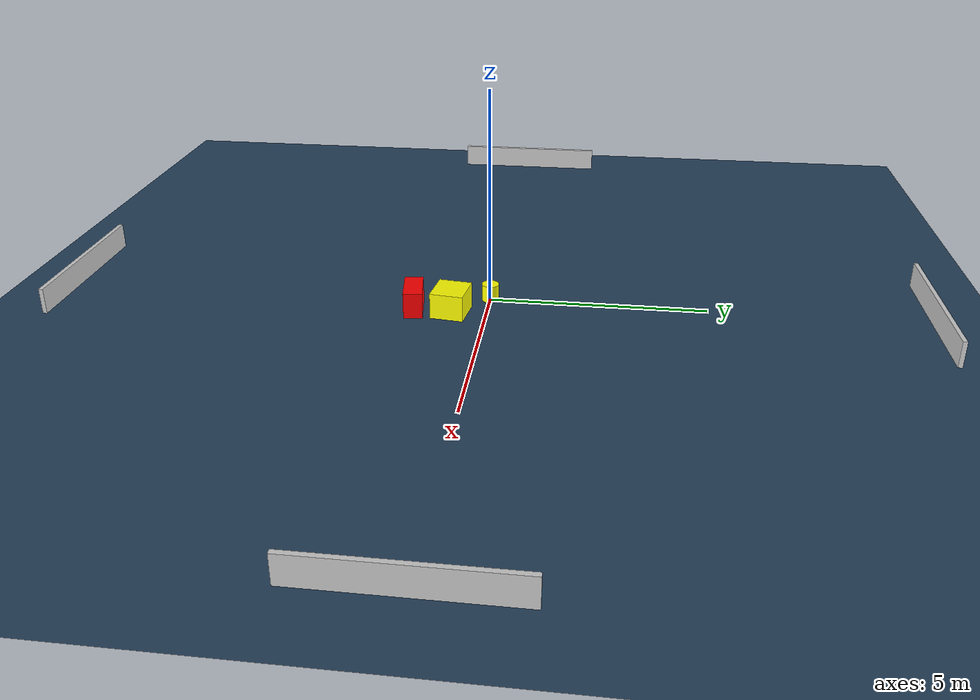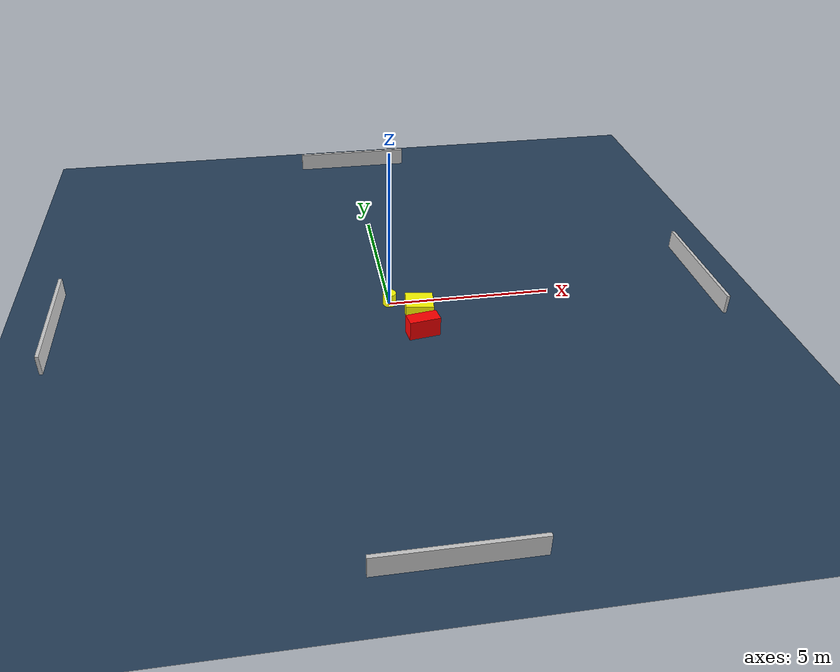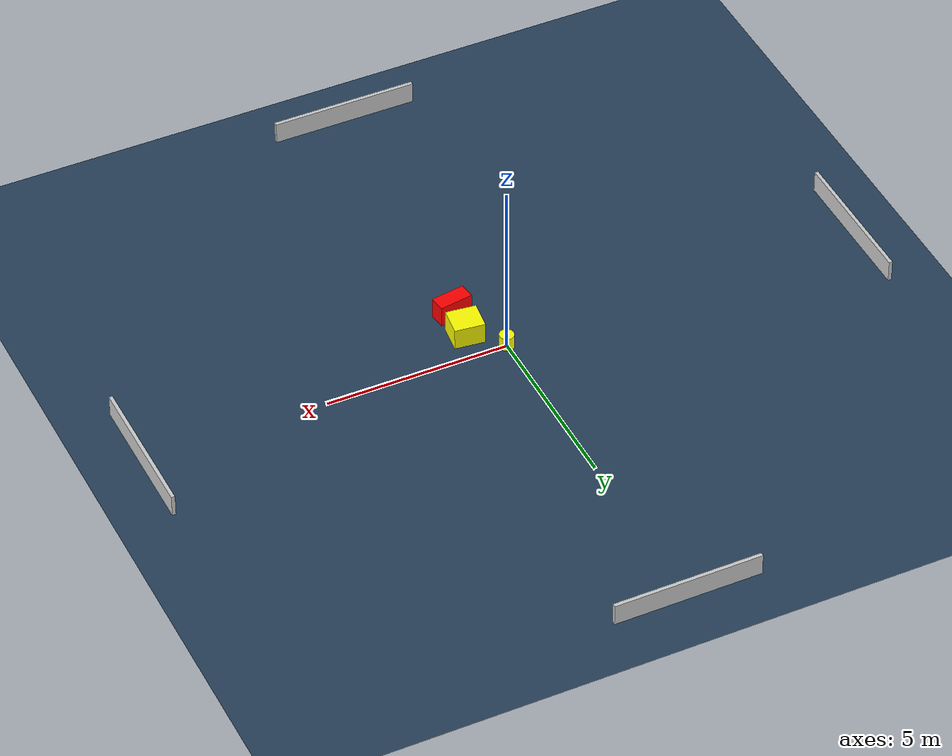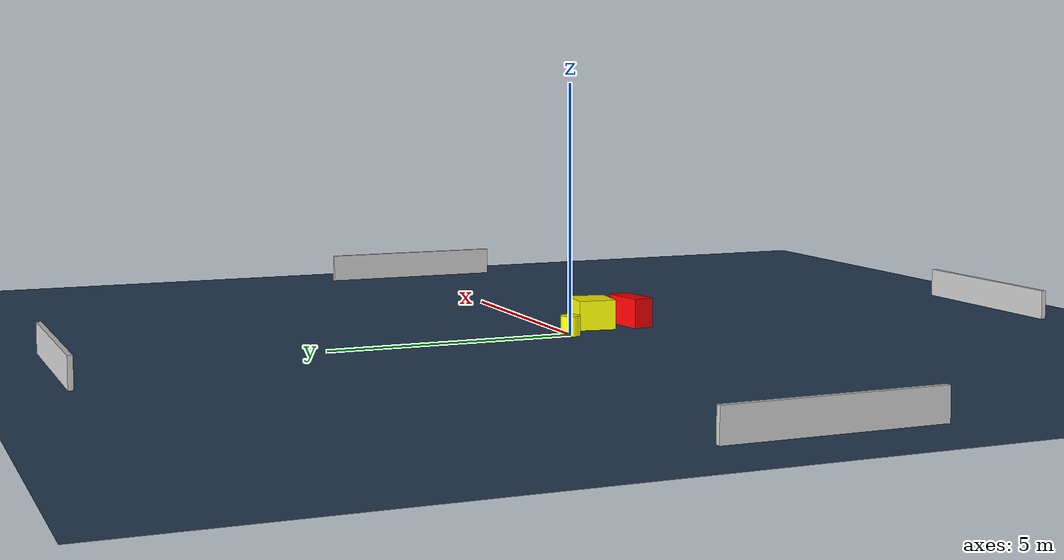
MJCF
<?xml version="1.0" ?>
<mujoco model="generated_environment">
  <option timestep="0.01" integrator="RK4" cone="elliptic"/>
  <default>
    <geom density="1"/>
  </default>
  <asset>
    <texture builtin="gradient" height="3072" name="skybox" rgb1="0.3 0.5 0.7" rgb2="0 0 0" type="skybox" width="512"/>
    <texture builtin="checker" height="300" name="groundplane" rgb1="0.2 0.3 0.4" rgb2="0.1 0.2 0.3" type="2d" width="300"/>
    <material name="groundplane" reflectance="0.2" texrepeat="5 5" texture="groundplane"/>
  </asset>
  <worldbody>
    <light dir="0 0 -1" directional="true" pos="0 0 1.5"/>
    <geom condim="3" friction="0.5 0.005 0.001" material="groundplane" name="floor" pos="0 0 0" size="0 0 0.05" type="plane"/>
    <body name="walls">
      <geom name="wall_1" condim="4" pos="-10.0 0.0 0.3" rgba="0.800000011920929 0.800000011920929 0.800000011920929 1.0" size="0.05 2.0 0.3" type="box"/>
      <geom name="wall_2" condim="4" pos="10.0 0.0 0.3" rgba="0.800000011920929 0.800000011920929 0.800000011920929 1.0" size="0.05 2.0 0.3" type="box"/>
      <geom name="wall_3" condim="4" pos="0.0 -10.0 0.3" rgba="0.800000011920929 0.800000011920929 0.800000011920929 1.0" size="2.0 0.05 0.3" type="box"/>
      <geom name="wall_4" condim="4" pos="0.0 10.0 0.3" rgba="0.800000011920929 0.800000011920929 0.800000011920929 1.0" size="2.0 0.05 0.3" type="box"/>
    </body>
    <body name="robot">
      <joint name="joint_x" type="slide" pos="0 0 0" axis="1 0 0"/>
      <joint name="joint_y" type="slide" pos="0 0 0" axis="0 1 0"/>
      <geom name="robot" type="cylinder" pos="0.0 0.0 0.2" size="0.2 0.2 0.0" mass="5.0" friction="1.0 0.005 0.0001" condim="4" rgba="1.0 1.0 0.0 1.0"/>
    </body>
    <body name="obstacle_1_movable">
      <geom name="obstacle_1_movable" condim="4" pos="0.7799584904568051 -0.8063920132036355 0.3" euler="0 0 172.98518155226108" friction="0.0 0.005 0.001" rgba="1.0 1.0 0.0 1.0" size="0.4128347384703528 0.3822047430334089 0.3" type="box" mass="0.1"/>
      <joint type="free"/>
    </body>
    <body name="obstacle_2_static">
      <geom name="obstacle_2_static" condim="4" pos="0.7380673044882389 -1.6826431578114411 0.3" euler="0 0 8.349942761187856" friction="0.0 0.005 0.001" rgba="1.0 0.0 0.0 1.0" size="0.46619599032695597 0.21603315798195538 0.3" type="box"/>
    </body>
  </worldbody>
  <actuator>
    <motor name="actuator_x" joint="joint_x" gear="1" ctrlrange="-1 1"/>
    <motor name="actuator_y" joint="joint_y" gear="1" ctrlrange="-1 1"/>
  </actuator>
</mujoco>
